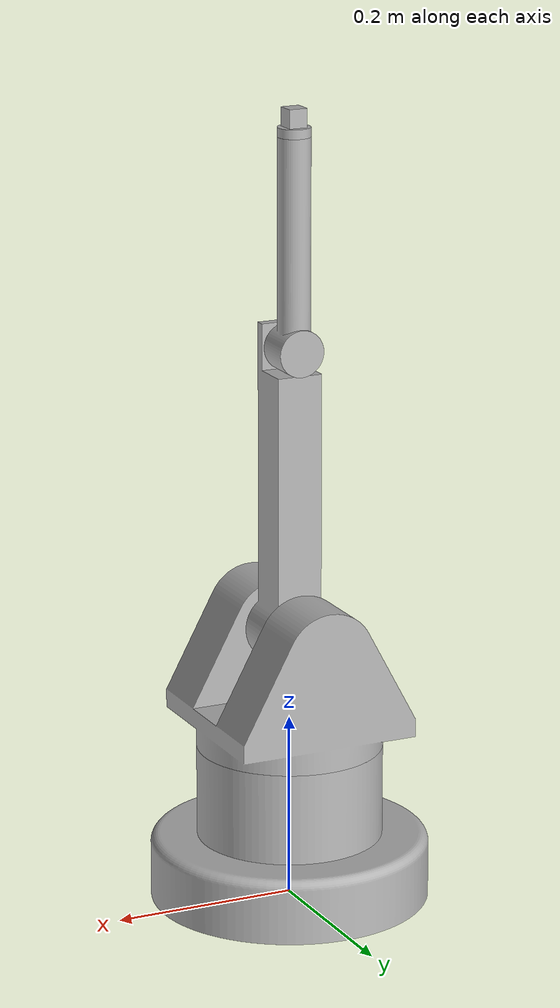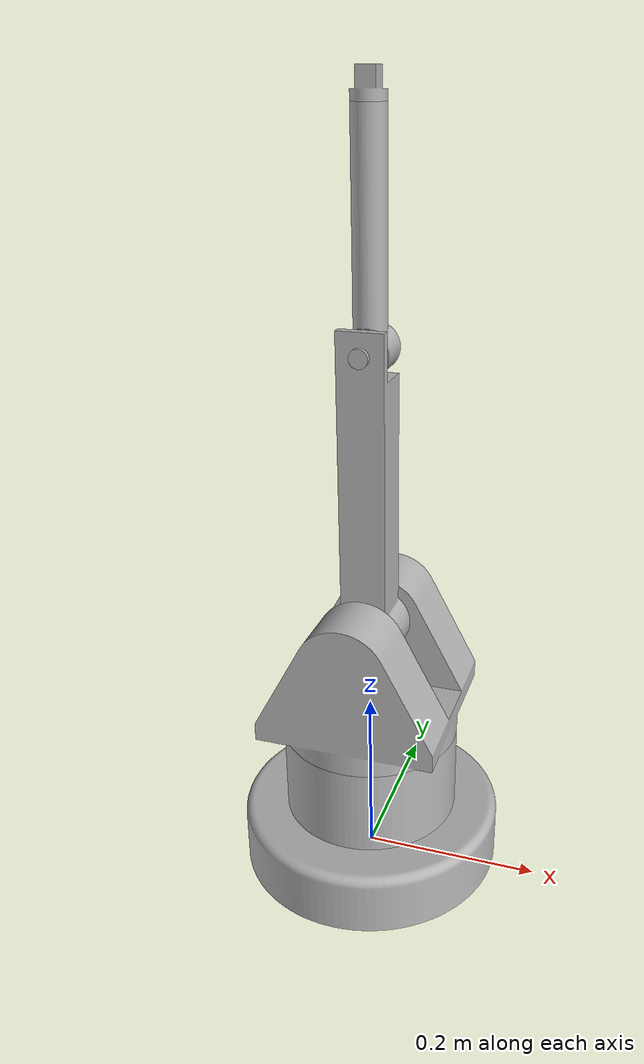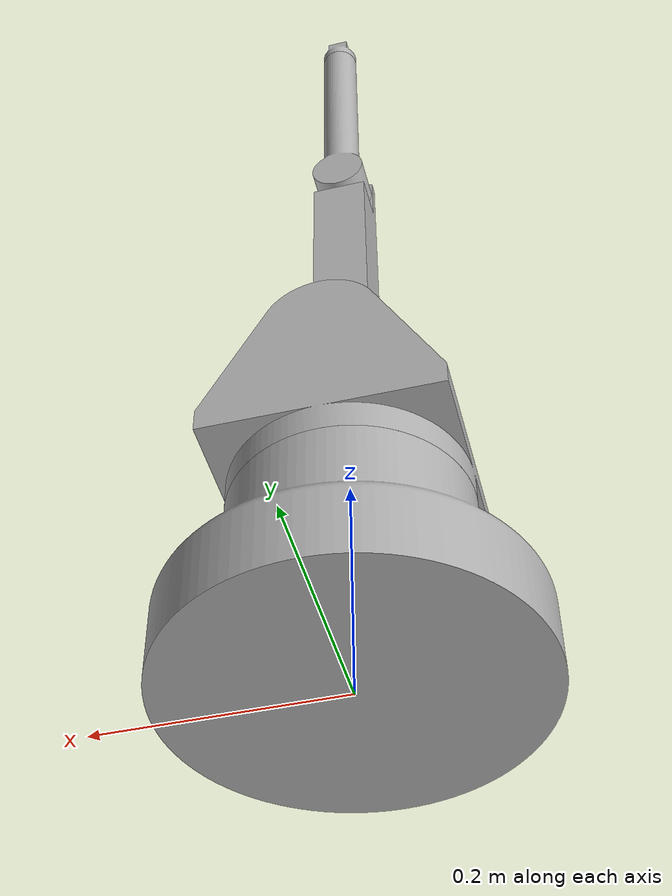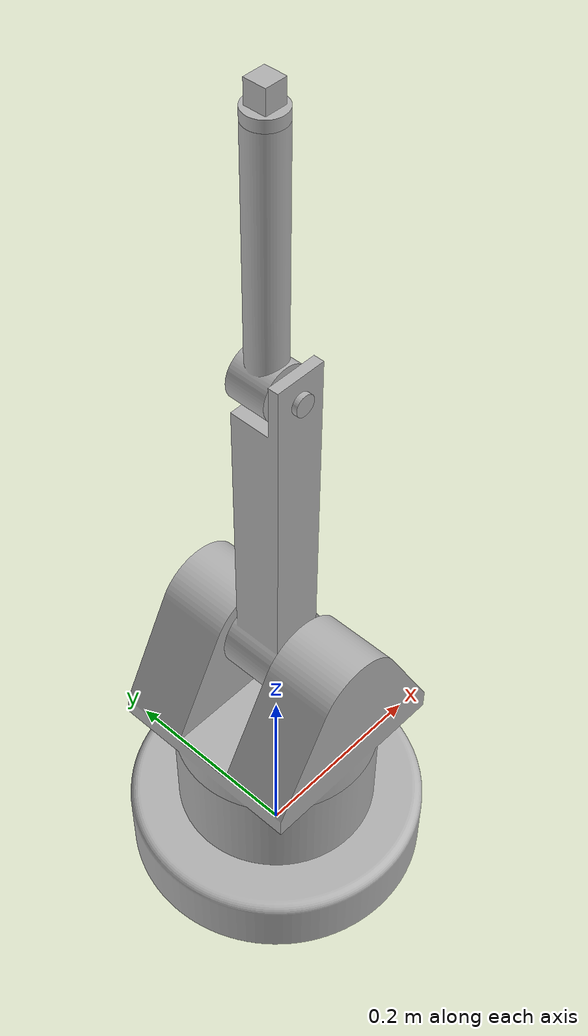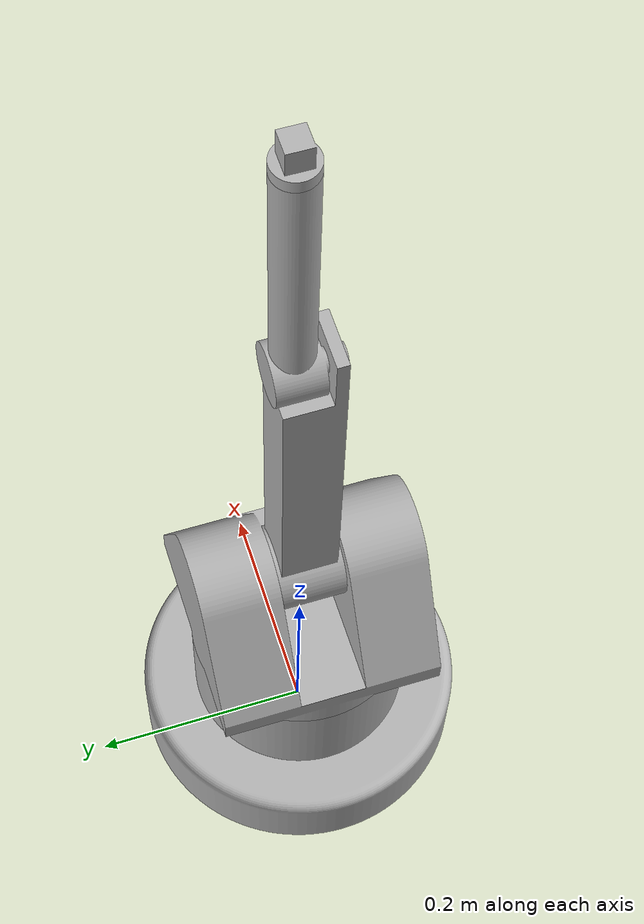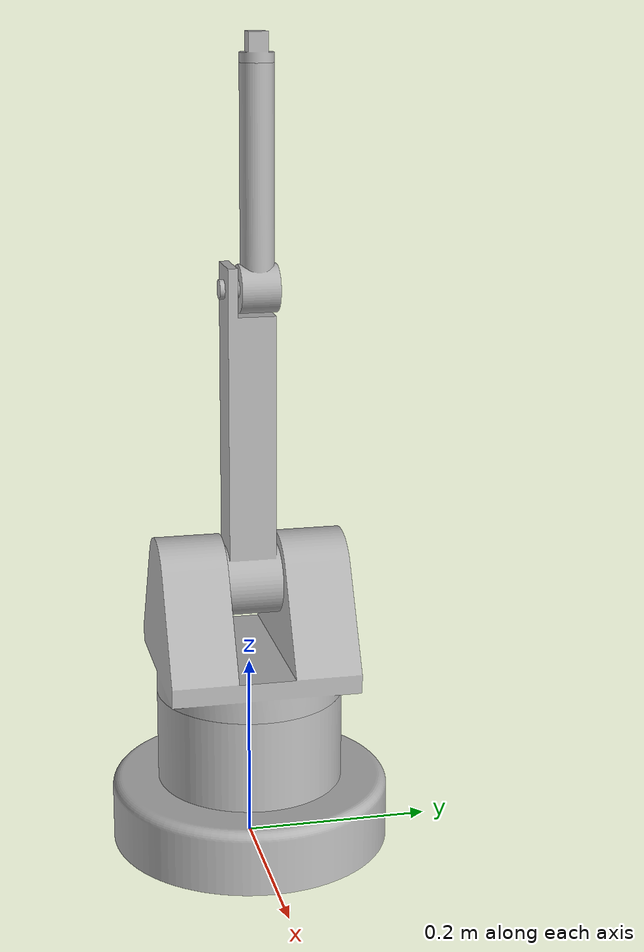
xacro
<?xml version="1.0" ?>
<robot name="Joint" xmlns:xacro="http://www.ros.org/wiki/xacro">

<xacro:include filename="$(find Joint_description)/urdf/materials.xacro" />
<xacro:include filename="$(find Joint_description)/urdf/Joint.trans" />
<xacro:include filename="$(find Joint_description)/urdf/Joint.gazebo" />
<link name="base_link">
  <inertial>
    <origin xyz="1.8032835874877323e-17 0.0 0.06801034423940835" rpy="0 0 0"/>
    <mass value="63.34696069730459"/>
    <inertia ixx="0.423825" iyy="0.423825" izz="0.556862" ixy="0.0" iyz="0.0" ixz="0.0"/>
  </inertial>
  <visual>
    <origin xyz="0 0 0" rpy="0 0 0"/>
    <geometry>
      <mesh filename="file://$(find Joint_description)/meshes/base_link.stl" scale="0.001 0.001 0.001"/>
    </geometry>
    <material name="silver"/>
  </visual>
  <collision>
    <origin xyz="0 0 0" rpy="0 0 0"/>
    <geometry>
      <mesh filename="file://$(find Joint_description)/meshes/base_link.stl" scale="0.001 0.001 0.001"/>
    </geometry>
  </collision>
</link>

<link name="platform_1">
  <inertial>
    <origin xyz="0.0 0.0 0.064606666816059" rpy="0 0 0"/>
    <mass value="29.28455786408046"/>
    <inertia ixx="0.176828" iyy="0.127578" izz="0.187811" ixy="0.0" iyz="0.0" ixz="0.0"/>
  </inertial>
  <visual>
    <origin xyz="-0.0 -0.0 -0.17" rpy="0 0 0"/>
    <geometry>
      <mesh filename="file://$(find Joint_description)/meshes/platform_1.stl" scale="0.001 0.001 0.001"/>
    </geometry>
    <material name="silver"/>
  </visual>
  <collision>
    <origin xyz="-0.0 -0.0 -0.17" rpy="0 0 0"/>
    <geometry>
      <mesh filename="file://$(find Joint_description)/meshes/platform_1.stl" scale="0.001 0.001 0.001"/>
    </geometry>
  </collision>
</link>

<link name="rotor_1">
  <inertial>
    <origin xyz="1.4995644537752558e-15 -0.00039882243240364453 0.0991232340454346" rpy="0 0 0"/>
    <mass value="8.60475658980257"/>
    <inertia ixx="0.092644" iyy="0.090955" izz="0.006297" ixy="0.0" iyz="0.000732" ixz="-0.0"/>
  </inertial>
  <visual>
    <origin xyz="-0.0 -0.0 -0.295" rpy="0 0 0"/>
    <geometry>
      <mesh filename="file://$(find Joint_description)/meshes/rotor_1.stl" scale="0.001 0.001 0.001"/>
    </geometry>
    <material name="silver"/>
  </visual>
  <collision>
    <origin xyz="-0.0 -0.0 -0.295" rpy="0 0 0"/>
    <geometry>
      <mesh filename="file://$(find Joint_description)/meshes/rotor_1.stl" scale="0.001 0.001 0.001"/>
    </geometry>
  </collision>
</link>

<link name="Roller_1">
  <inertial>
    <origin xyz="2.1970392331582062e-08 0.029327728150389816 0.08718971936067588" rpy="0 0 0"/>
    <mass value="2.2010294506395156"/>
    <inertia ixx="0.012891" iyy="0.012863" izz="0.000459" ixy="-0.0" iyz="-0.000129" ixz="0.0"/>
  </inertial>
  <visual>
    <origin xyz="-0.0 0.02 -0.6075" rpy="0 0 0"/>
    <geometry>
      <mesh filename="file://$(find Joint_description)/meshes/Roller_1.stl" scale="0.001 0.001 0.001"/>
    </geometry>
    <material name="silver"/>
  </visual>
  <collision>
    <origin xyz="-0.0 0.02 -0.6075" rpy="0 0 0"/>
    <geometry>
      <mesh filename="file://$(find Joint_description)/meshes/Roller_1.stl" scale="0.001 0.001 0.001"/>
    </geometry>
  </collision>
</link>

<link name="EndEffectorConnector_1">
  <inertial>
    <origin xyz="2.7077572584804178e-17 -8.673617379884035e-18 0.007721148521307564" rpy="0 0 0"/>
    <mass value="0.1259950997223672"/>
    <inertia ixx="1.7e-05" iyy="1.7e-05" izz="1.5e-05" ixy="-0.0" iyz="0.0" ixz="-0.0"/>
  </inertial>
  <visual>
    <origin xyz="-0.0 -0.01 -0.8375" rpy="0 0 0"/>
    <geometry>
      <mesh filename="file://$(find Joint_description)/meshes/EndEffectorConnector_1.stl" scale="0.001 0.001 0.001"/>
    </geometry>
    <material name="silver"/>
  </visual>
  <collision>
    <origin xyz="-0.0 -0.01 -0.8375" rpy="0 0 0"/>
    <geometry>
      <mesh filename="file://$(find Joint_description)/meshes/EndEffectorConnector_1.stl" scale="0.001 0.001 0.001"/>
    </geometry>
  </collision>
</link>

<joint name="Revolute 1" type="continuous">
  <origin xyz="0.0 0.0 0.17" rpy="0 0 0"/>
  <parent link="base_link"/>
  <child link="platform_1"/>
  <axis xyz="0.0 0.0 1.0"/>
</joint>

<joint name="Revolute 2" type="revolute">
  <origin xyz="0.0 0.0 0.125" rpy="0 0 0"/>
  <parent link="platform_1"/>
  <child link="rotor_1"/>
  <axis xyz="0.0 -1.0 0.0"/>
  <limit upper="2.007129" lower="-2.007129" effort="100" velocity="100"/>
</joint>

<joint name="Revolute 3" type="revolute">
  <origin xyz="0.0 -0.02 0.3125" rpy="0 0 0"/>
  <parent link="rotor_1"/>
  <child link="Roller_1"/>
  <axis xyz="0.0 1.0 0.0"/>
  <limit upper="1.832596" lower="-1.832596" effort="100" velocity="100"/>
</joint>

<joint name="Revolute 4" type="continuous">
  <origin xyz="0.0 0.03 0.23" rpy="0 0 0"/>
  <parent link="Roller_1"/>
  <child link="EndEffectorConnector_1"/>
  <axis xyz="0.0 0.0 1.0"/>
</joint>

</robot>

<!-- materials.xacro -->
<robot name="Joint" xmlns:xacro="http://www.ros.org/wiki/xacro" >

<material name="silver">
  <color rgba="0.700 0.700 0.700 1.000"/>
</material>

</robot>

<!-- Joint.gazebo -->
<robot name="Joint" xmlns:xacro="http://www.ros.org/wiki/xacro" >

<xacro:property name="body_color" value="Gazebo/Silver" />

<gazebo>
  <plugin name="control" filename="libgazebo_ros_control.so"/>
</gazebo>
<gazebo reference="base_link">
  <material>${body_color}</material>
  <mu1>0.2</mu1>
  <mu2>0.2</mu2>
  <self_collide>true</self_collide>
  <gravity>true</gravity>
</gazebo>

<gazebo reference="platform_1">
  <material>${body_color}</material>
  <mu1>0.2</mu1>
  <mu2>0.2</mu2>
  <self_collide>true</self_collide>
</gazebo>

<gazebo reference="rotor_1">
  <material>${body_color}</material>
  <mu1>0.2</mu1>
  <mu2>0.2</mu2>
  <self_collide>true</self_collide>
</gazebo>

<gazebo reference="Roller_1">
  <material>${body_color}</material>
  <mu1>0.2</mu1>
  <mu2>0.2</mu2>
  <self_collide>true</self_collide>
</gazebo>

<gazebo reference="EndEffectorConnector_1">
  <material>${body_color}</material>
  <mu1>0.2</mu1>
  <mu2>0.2</mu2>
  <self_collide>true</self_collide>
</gazebo>

</robot>
